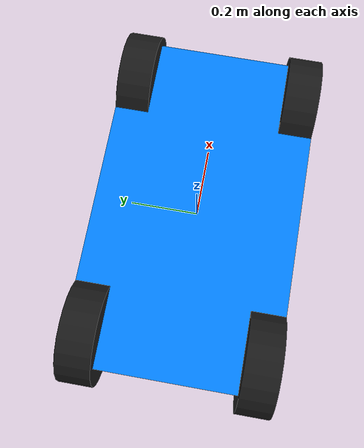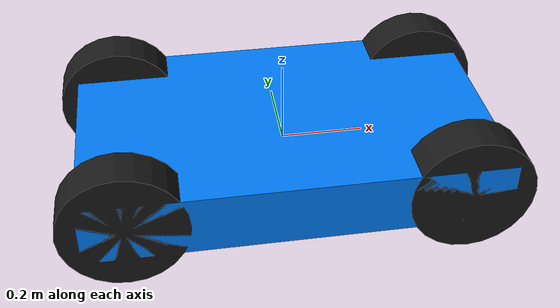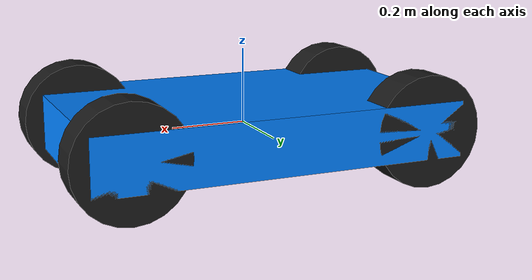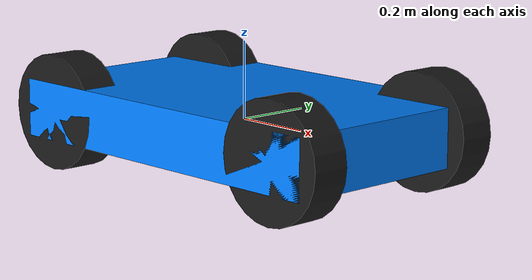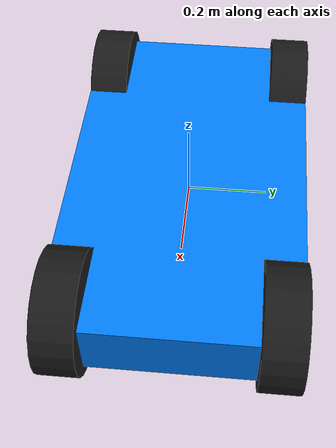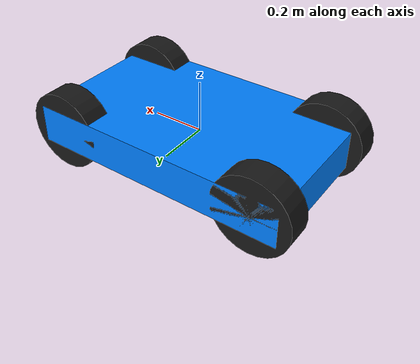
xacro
<?xml version="1.0"?>

<robot xmlns:xacro="http://www.ros.org/wiki/xacro" name="basicmicro_multi_controller_robot">

  <!-- Xacro arguments with multi-controller defaults -->
  <xacro:arg name="drive_mode" default="4WD"/>
  <xacro:arg name="front_port" default="/dev/ttyACM0"/>
  <xacro:arg name="rear_port" default="/dev/ttyACM1"/>
  <xacro:arg name="middle_port" default="/dev/ttyACM2"/>
  <xacro:arg name="baud" default="115200"/>
  <xacro:arg name="front_address" default="128"/>
  <xacro:arg name="rear_address" default="129"/>
  <xacro:arg name="middle_address" default="130"/>
  <xacro:arg name="wheel_radius" default="0.15"/>
  <xacro:arg name="wheel_separation_width" default="0.5"/>
  <xacro:arg name="wheel_separation_length" default="0.8"/>
  <xacro:arg name="encoder_counts_per_rev" default="1000"/>
  <xacro:arg name="gear_ratio" default="15.0"/>
  <xacro:arg name="motion_strategy" default="speed_accel"/>
  <xacro:arg name="default_acceleration" default="1500"/>
  <xacro:arg name="buffer_depth" default="6"/>
  <xacro:arg name="max_speed" default="3.0"/>

  <!-- Multi-Controller Robot Physical Properties -->
  <xacro:property name="wheel_radius" value="$(arg wheel_radius)"/>
  <xacro:property name="wheel_separation_width" value="$(arg wheel_separation_width)"/>
  <xacro:property name="wheel_separation_length" value="$(arg wheel_separation_length)"/>
  <xacro:property name="wheel_width" value="0.1"/>
  <xacro:property name="wheel_mass" value="3.0"/>
  <xacro:property name="drive_mode" value="$(arg drive_mode)"/>

  <!-- Heavy-duty base platform -->
  <xacro:property name="base_length" value="1.0"/>
  <xacro:property name="base_width" value="0.6"/>
  <xacro:property name="base_height" value="0.15"/>
  <xacro:property name="base_mass" value="80.0"/>

  <!-- Multi-Controller Materials -->
  <material name="multi_controller_blue">
    <color rgba="0.0 0.5 1.0 1.0"/>
  </material>

  <material name="multi_controller_black">
    <color rgba="0.1 0.1 0.1 1.0"/>
  </material>

  <material name="multi_controller_red">
    <color rgba="0.8 0.0 0.0 1.0"/>
  </material>

  <material name="multi_controller_green">
    <color rgba="0.0 0.8 0.0 1.0"/>
  </material>

  <!-- Base Link (Heavy-duty multi-controller platform) -->
  <link name="base_link">
    <visual>
      <geometry>
        <box size="${base_length} ${base_width} ${base_height}"/>
      </geometry>
      <material name="multi_controller_blue"/>
    </visual>
    <collision>
      <geometry>
        <box size="${base_length} ${base_width} ${base_height}"/>
      </geometry>
    </collision>
    <inertial>
      <mass value="${base_mass}"/>
      <inertia ixx="${base_mass * (base_width*base_width + base_height*base_height) / 12}"
               iyy="${base_mass * (base_length*base_length + base_height*base_height) / 12}"
               izz="${base_mass * (base_length*base_length + base_width*base_width) / 12}"
               ixy="0" ixz="0" iyz="0"/>
    </inertial>
  </link>

  <!-- Front Left Wheel -->
  <link name="front_left_wheel">
    <visual>
      <geometry>
        <cylinder radius="${wheel_radius}" length="${wheel_width}"/>
      </geometry>
      <material name="multi_controller_black"/>
    </visual>
    <collision>
      <geometry>
        <cylinder radius="${wheel_radius}" length="${wheel_width}"/>
      </geometry>
    </collision>
    <inertial>
      <mass value="${wheel_mass}"/>
      <inertia ixx="${wheel_mass * (3*wheel_radius*wheel_radius + wheel_width*wheel_width) / 12}"
               iyy="${wheel_mass * (3*wheel_radius*wheel_radius + wheel_width*wheel_width) / 12}"
               izz="${wheel_mass * wheel_radius*wheel_radius / 2}"
               ixy="0" ixz="0" iyz="0"/>
    </inertial>
  </link>

  <!-- Front Right Wheel -->
  <link name="front_right_wheel">
    <visual>
      <geometry>
        <cylinder radius="${wheel_radius}" length="${wheel_width}"/>
      </geometry>
      <material name="multi_controller_black"/>
    </visual>
    <collision>
      <geometry>
        <cylinder radius="${wheel_radius}" length="${wheel_width}"/>
      </geometry>
    </collision>
    <inertial>
      <mass value="${wheel_mass}"/>
      <inertia ixx="${wheel_mass * (3*wheel_radius*wheel_radius + wheel_width*wheel_width) / 12}"
               iyy="${wheel_mass * (3*wheel_radius*wheel_radius + wheel_width*wheel_width) / 12}"
               izz="${wheel_mass * wheel_radius*wheel_radius / 2}"
               ixy="0" ixz="0" iyz="0"/>
    </inertial>
  </link>

  <!-- Rear Left Wheel -->
  <link name="rear_left_wheel">
    <visual>
      <geometry>
        <cylinder radius="${wheel_radius}" length="${wheel_width}"/>
      </geometry>
      <material name="multi_controller_black"/>
    </visual>
    <collision>
      <geometry>
        <cylinder radius="${wheel_radius}" length="${wheel_width}"/>
      </geometry>
    </collision>
    <inertial>
      <mass value="${wheel_mass}"/>
      <inertia ixx="${wheel_mass * (3*wheel_radius*wheel_radius + wheel_width*wheel_width) / 12}"
               iyy="${wheel_mass * (3*wheel_radius*wheel_radius + wheel_width*wheel_width) / 12}"
               izz="${wheel_mass * wheel_radius*wheel_radius / 2}"
               ixy="0" ixz="0" iyz="0"/>
    </inertial>
  </link>

  <!-- Rear Right Wheel -->
  <link name="rear_right_wheel">
    <visual>
      <geometry>
        <cylinder radius="${wheel_radius}" length="${wheel_width}"/>
      </geometry>
      <material name="multi_controller_black"/>
    </visual>
    <collision>
      <geometry>
        <cylinder radius="${wheel_radius}" length="${wheel_width}"/>
      </geometry>
    </collision>
    <inertial>
      <mass value="${wheel_mass}"/>
      <inertia ixx="${wheel_mass * (3*wheel_radius*wheel_radius + wheel_width*wheel_width) / 12}"
               iyy="${wheel_mass * (3*wheel_radius*wheel_radius + wheel_width*wheel_width) / 12}"
               izz="${wheel_mass * wheel_radius*wheel_radius / 2}"
               ixy="0" ixz="0" iyz="0"/>
    </inertial>
  </link>

  <!-- Middle wheels (6WD only) -->
  <xacro:if value="${drive_mode == '6WD'}">
    <!-- Middle Left Wheel -->
    <link name="middle_left_wheel">
      <visual>
        <geometry>
          <cylinder radius="${wheel_radius}" length="${wheel_width}"/>
        </geometry>
        <material name="multi_controller_black"/>
      </visual>
      <collision>
        <geometry>
          <cylinder radius="${wheel_radius}" length="${wheel_width}"/>
        </geometry>
      </collision>
      <inertial>
        <mass value="${wheel_mass}"/>
        <inertia ixx="${wheel_mass * (3*wheel_radius*wheel_radius + wheel_width*wheel_width) / 12}"
                 iyy="${wheel_mass * (3*wheel_radius*wheel_radius + wheel_width*wheel_width) / 12}"
                 izz="${wheel_mass * wheel_radius*wheel_radius / 2}"
                 ixy="0" ixz="0" iyz="0"/>
      </inertial>
    </link>

    <!-- Middle Right Wheel -->
    <link name="middle_right_wheel">
      <visual>
        <geometry>
          <cylinder radius="${wheel_radius}" length="${wheel_width}"/>
        </geometry>
        <material name="multi_controller_black"/>
      </visual>
      <collision>
        <geometry>
          <cylinder radius="${wheel_radius}" length="${wheel_width}"/>
        </geometry>
      </collision>
      <inertial>
        <mass value="${wheel_mass}"/>
        <inertia ixx="${wheel_mass * (3*wheel_radius*wheel_radius + wheel_width*wheel_width) / 12}"
                 iyy="${wheel_mass * (3*wheel_radius*wheel_radius + wheel_width*wheel_width) / 12}"
                 izz="${wheel_mass * wheel_radius*wheel_radius / 2}"
                 ixy="0" ixz="0" iyz="0"/>
      </inertial>
    </link>
  </xacro:if>

  <!-- Joint Definitions -->
  <!-- Front Left Wheel Joint -->
  <joint name="front_left_wheel_joint" type="continuous">
    <parent link="base_link"/>
    <child link="front_left_wheel"/>
    <origin xyz="${wheel_separation_length/2} ${wheel_separation_width/2} 0" rpy="${-pi/2} 0 0"/>
    <axis xyz="0 0 1"/>
  </joint>

  <!-- Front Right Wheel Joint -->
  <joint name="front_right_wheel_joint" type="continuous">
    <parent link="base_link"/>
    <child link="front_right_wheel"/>
    <origin xyz="${wheel_separation_length/2} ${-wheel_separation_width/2} 0" rpy="${-pi/2} 0 0"/>
    <axis xyz="0 0 1"/>
  </joint>

  <!-- Rear Left Wheel Joint -->
  <joint name="rear_left_wheel_joint" type="continuous">
    <parent link="base_link"/>
    <child link="rear_left_wheel"/>
    <origin xyz="${-wheel_separation_length/2} ${wheel_separation_width/2} 0" rpy="${-pi/2} 0 0"/>
    <axis xyz="0 0 1"/>
  </joint>

  <!-- Rear Right Wheel Joint -->
  <joint name="rear_right_wheel_joint" type="continuous">
    <parent link="base_link"/>
    <child link="rear_right_wheel"/>
    <origin xyz="${-wheel_separation_length/2} ${-wheel_separation_width/2} 0" rpy="${-pi/2} 0 0"/>
    <axis xyz="0 0 1"/>
  </joint>

  <!-- Middle wheel joints (6WD only) -->
  <xacro:if value="${drive_mode == '6WD'}">
    <!-- Middle Left Wheel Joint -->
    <joint name="middle_left_wheel_joint" type="continuous">
      <parent link="base_link"/>
      <child link="middle_left_wheel"/>
      <origin xyz="0 ${wheel_separation_width/2} 0" rpy="${-pi/2} 0 0"/>
      <axis xyz="0 0 1"/>
    </joint>

    <!-- Middle Right Wheel Joint -->
    <joint name="middle_right_wheel_joint" type="continuous">
      <parent link="base_link"/>
      <child link="middle_right_wheel"/>
      <origin xyz="0 ${-wheel_separation_width/2} 0" rpy="${-pi/2} 0 0"/>
      <axis xyz="0 0 1"/>
    </joint>
  </xacro:if>

  <!-- ros2_control Hardware Interface - Front Controller -->
  <ros2_control name="FrontControllerSystem" type="system">
    <hardware>
      <plugin>basicmicro_ros2/BasicmicroHardwareInterface</plugin>

      <!-- Front controller connection parameters -->
      <param name="port">$(arg front_port)</param>
      <param name="baud">$(arg baud)</param>
      <param name="address">$(arg front_address)</param>

      <!-- Robot physical parameters -->
      <param name="wheel_radius">$(arg wheel_radius)</param>
      <param name="wheel_separation">$(arg wheel_separation_width)</param>
      <param name="encoder_counts_per_rev">$(arg encoder_counts_per_rev)</param>
      <param name="gear_ratio">$(arg gear_ratio)</param>

      <!-- Motion control parameters -->
      <param name="motion_strategy">$(arg motion_strategy)</param>
      <param name="buffer_depth">$(arg buffer_depth)</param>
      <param name="default_acceleration">$(arg default_acceleration)</param>
      <param name="max_speed">$(arg max_speed)</param>

      <!-- Controller identification -->
      <param name="controller_name">front_controller</param>
      <param name="controller_role">front</param>
    </hardware>

    <!-- Front Left Wheel Interface -->
    <joint name="front_left_wheel_joint">
      <command_interface name="velocity">
        <param name="min">-$(arg max_speed)</param>
        <param name="max">$(arg max_speed)</param>
      </command_interface>
      <state_interface name="position"/>
      <state_interface name="velocity"/>
    </joint>

    <!-- Front Right Wheel Interface -->
    <joint name="front_right_wheel_joint">
      <command_interface name="velocity">
        <param name="min">-$(arg max_speed)</param>
        <param name="max">$(arg max_speed)</param>
      </command_interface>
      <state_interface name="position"/>
      <state_interface name="velocity"/>
    </joint>
  </ros2_control>

  <!-- ros2_control Hardware Interface - Rear Controller -->
  <ros2_control name="RearControllerSystem" type="system">
    <hardware>
      <plugin>basicmicro_ros2/BasicmicroHardwareInterface</plugin>

      <!-- Rear controller connection parameters -->
      <param name="port">$(arg rear_port)</param>
      <param name="baud">$(arg baud)</param>
      <param name="address">$(arg rear_address)</param>

      <!-- Robot physical parameters -->
      <param name="wheel_radius">$(arg wheel_radius)</param>
      <param name="wheel_separation">$(arg wheel_separation_width)</param>
      <param name="encoder_counts_per_rev">$(arg encoder_counts_per_rev)</param>
      <param name="gear_ratio">$(arg gear_ratio)</param>

      <!-- Motion control parameters -->
      <param name="motion_strategy">$(arg motion_strategy)</param>
      <param name="buffer_depth">$(arg buffer_depth)</param>
      <param name="default_acceleration">$(arg default_acceleration)</param>
      <param name="max_speed">$(arg max_speed)</param>

      <!-- Controller identification -->
      <param name="controller_name">rear_controller</param>
      <param name="controller_role">rear</param>
    </hardware>

    <!-- Rear Left Wheel Interface -->
    <joint name="rear_left_wheel_joint">
      <command_interface name="velocity">
        <param name="min">-$(arg max_speed)</param>
        <param name="max">$(arg max_speed)</param>
      </command_interface>
      <state_interface name="position"/>
      <state_interface name="velocity"/>
    </joint>

    <!-- Rear Right Wheel Interface -->
    <joint name="rear_right_wheel_joint">
      <command_interface name="velocity">
        <param name="min">-$(arg max_speed)</param>
        <param name="max">$(arg max_speed)</param>
      </command_interface>
      <state_interface name="position"/>
      <state_interface name="velocity"/>
    </joint>
  </ros2_control>

  <!-- ros2_control Hardware Interface - Middle Controller (6WD only) -->
  <xacro:if value="${drive_mode == '6WD'}">
    <ros2_control name="MiddleControllerSystem" type="system">
      <hardware>
        <plugin>basicmicro_ros2/BasicmicroHardwareInterface</plugin>

        <!-- Middle controller connection parameters -->
        <param name="port">$(arg middle_port)</param>
        <param name="baud">$(arg baud)</param>
        <param name="address">$(arg middle_address)</param>

        <!-- Robot physical parameters -->
        <param name="wheel_radius">$(arg wheel_radius)</param>
        <param name="wheel_separation">$(arg wheel_separation_width)</param>
        <param name="encoder_counts_per_rev">$(arg encoder_counts_per_rev)</param>
        <param name="gear_ratio">$(arg gear_ratio)</param>

        <!-- Motion control parameters -->
        <param name="motion_strategy">$(arg motion_strategy)</param>
        <param name="buffer_depth">$(arg buffer_depth)</param>
        <param name="default_acceleration">$(arg default_acceleration)</param>
        <param name="max_speed">$(arg max_speed)</param>

        <!-- Controller identification -->
        <param name="controller_name">middle_controller</param>
        <param name="controller_role">middle</param>
      </hardware>

      <!-- Middle Left Wheel Interface -->
      <joint name="middle_left_wheel_joint">
        <command_interface name="velocity">
          <param name="min">-$(arg max_speed)</param>
          <param name="max">$(arg max_speed)</param>
        </command_interface>
        <state_interface name="position"/>
        <state_interface name="velocity"/>
      </joint>

      <!-- Middle Right Wheel Interface -->
      <joint name="middle_right_wheel_joint">
        <command_interface name="velocity">
          <param name="min">-$(arg max_speed)</param>
          <param name="max">$(arg max_speed)</param>
        </command_interface>
        <state_interface name="position"/>
        <state_interface name="velocity"/>
      </joint>
    </ros2_control>
  </xacro:if>

  <!-- Gazebo Integration (Multi-Controller Configuration) -->
  <gazebo>
    <plugin filename="libgazebo_ros2_control.so" name="gazebo_ros2_control">
      <parameters>$(find basicmicro_ros2)/config/multi_controller_controllers.yaml</parameters>
    </plugin>
  </gazebo>

  <!-- Gazebo Multi-Controller Wheel Properties -->
  <gazebo reference="front_left_wheel">
    <material>Gazebo/Black</material>
    <mu1>1.2</mu1>
    <mu2>1.2</mu2>
    <kp>1000000.0</kp>
    <kd>1.0</kd>
  </gazebo>

  <gazebo reference="front_right_wheel">
    <material>Gazebo/Black</material>
    <mu1>1.2</mu1>
    <mu2>1.2</mu2>
    <kp>1000000.0</kp>
    <kd>1.0</kd>
  </gazebo>

  <gazebo reference="rear_left_wheel">
    <material>Gazebo/Black</material>
    <mu1>1.2</mu1>
    <mu2>1.2</mu2>
    <kp>1000000.0</kp>
    <kd>1.0</kd>
  </gazebo>

  <gazebo reference="rear_right_wheel">
    <material>Gazebo/Black</material>
    <mu1>1.2</mu1>
    <mu2>1.2</mu2>
    <kp>1000000.0</kp>
    <kd>1.0</kd>
  </gazebo>

  <xacro:if value="${drive_mode == '6WD'}">
    <gazebo reference="middle_left_wheel">
      <material>Gazebo/Black</material>
      <mu1>1.2</mu1>
      <mu2>1.2</mu2>
      <kp>1000000.0</kp>
      <kd>1.0</kd>
    </gazebo>

    <gazebo reference="middle_right_wheel">
      <material>Gazebo/Black</material>
      <mu1>1.2</mu1>
      <mu2>1.2</mu2>
      <kp>1000000.0</kp>
      <kd>1.0</kd>
    </gazebo>
  </xacro:if>

</robot>
